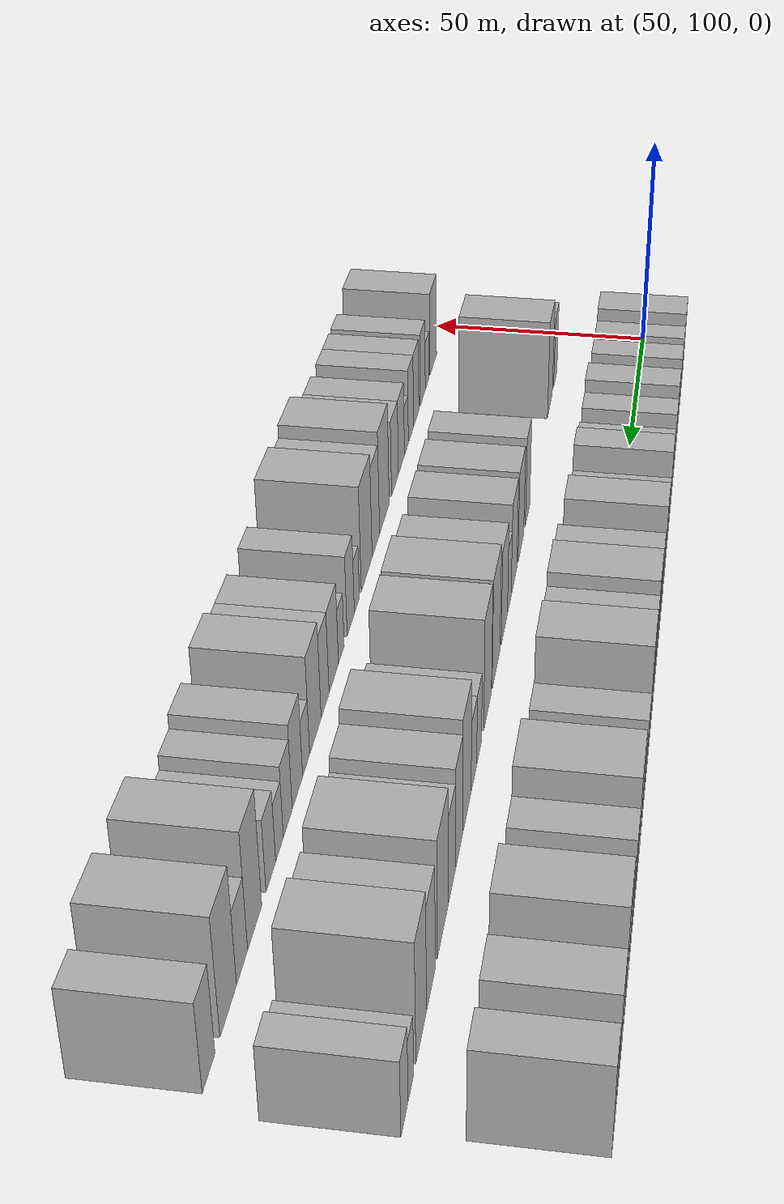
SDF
<sdf version="1.6">
 <world name="default">
  <model name="building_52">
   <static>1</static>
   <pose>50.0000 116.5510 0 0.000000 0.000000 0.000000</pose>
   <link name="link">
    <pose>0 0 9.00 0 0 0</pose>
    <collision name="collision"><geometry><box><size>20.0000 8.9284 18.0000</size></box></geometry></collision>
    <visual name="visual">
     <cast_shadows>0</cast_shadows>
     <geometry><box><size>20.0000 8.9284 18.0000</size></box></geometry>
     <material>
      <script>
       <uri>model://HANNAS_wall/materials/scripts</uri>
       <uri>model://HANNAS_wall/materials/textures</uri>
       <name>vrc/HANNAS_wall</name>
      </script>
     </material>
    </visual>
   </link>
  </model>
  <model name="building_53">
   <static>1</static>
   <pose>50.0000 124.0725 0 0.000000 0.000000 0.000000</pose>
   <link name="link">
    <pose>0 0 7.50 0 0 0</pose>
    <collision name="collision"><geometry><box><size>20.0000 6.1146 15.0000</size></box></geometry></collision>
    <visual name="visual">
     <cast_shadows>0</cast_shadows>
     <geometry><box><size>20.0000 6.1146 15.0000</size></box></geometry>
     <material>
      <script>
       <uri>model://HANNAS_wall/materials/scripts</uri>
       <uri>model://HANNAS_wall/materials/textures</uri>
       <name>vrc/HANNAS_wall</name>
      </script>
     </material>
    </visual>
   </link>
  </model>
  <model name="building_54">
   <static>1</static>
   <pose>50.0000 133.5825 0 0.000000 0.000000 0.000000</pose>
   <link name="link">
    <pose>0 0 7.50 0 0 0</pose>
    <collision name="collision"><geometry><box><size>20.0000 6.9054 15.0000</size></box></geometry></collision>
    <visual name="visual">
     <cast_shadows>0</cast_shadows>
     <geometry><box><size>20.0000 6.9054 15.0000</size></box></geometry>
     <material>
      <script>
       <uri>model://HANNAS_wall/materials/scripts</uri>
       <uri>model://HANNAS_wall/materials/textures</uri>
       <name>vrc/HANNAS_wall</name>
      </script>
     </material>
    </visual>
   </link>
  </model>
  <model name="building_55">
   <static>1</static>
   <pose>50.0000 142.9918 0 0.000000 0.000000 0.000000</pose>
   <link name="link">
    <pose>0 0 6.00 0 0 0</pose>
    <collision name="collision"><geometry><box><size>20.0000 5.9133 12.0000</size></box></geometry></collision>
    <visual name="visual">
     <cast_shadows>0</cast_shadows>
     <geometry><box><size>20.0000 5.9133 12.0000</size></box></geometry>
     <material>
      <script>
       <uri>model://HANNAS_wall/materials/scripts</uri>
       <uri>model://HANNAS_wall/materials/textures</uri>
       <name>vrc/HANNAS_wall</name>
      </script>
     </material>
    </visual>
   </link>
  </model>
  <model name="building_56">
   <static>1</static>
   <pose>50.0000 150.8414 0 0.000000 0.000000 0.000000</pose>
   <link name="link">
    <pose>0 0 9.00 0 0 0</pose>
    <collision name="collision"><geometry><box><size>20.0000 7.7859 18.0000</size></box></geometry></collision>
    <visual name="visual">
     <cast_shadows>0</cast_shadows>
     <geometry><box><size>20.0000 7.7859 18.0000</size></box></geometry>
     <material>
      <script>
       <uri>model://HANNAS_wall/materials/scripts</uri>
       <uri>model://HANNAS_wall/materials/textures</uri>
       <name>vrc/HANNAS_wall</name>
      </script>
     </material>
    </visual>
   </link>
  </model>
  <model name="building_57">
   <static>1</static>
   <pose>50.0000 158.1924 0 0.000000 0.000000 0.000000</pose>
   <link name="link">
    <pose>0 0 7.50 0 0 0</pose>
    <collision name="collision"><geometry><box><size>20.0000 6.9160 15.0000</size></box></geometry></collision>
    <visual name="visual">
     <cast_shadows>0</cast_shadows>
     <geometry><box><size>20.0000 6.9160 15.0000</size></box></geometry>
     <material>
      <script>
       <uri>model://HANNAS_wall/materials/scripts</uri>
       <uri>model://HANNAS_wall/materials/textures</uri>
       <name>vrc/HANNAS_wall</name>
      </script>
     </material>
    </visual>
   </link>
  </model>
  <model name="building_58">
   <static>1</static>
   <pose>50.0000 165.0952 0 0.000000 0.000000 0.000000</pose>
   <link name="link">
    <pose>0 0 6.00 0 0 0</pose>
    <collision name="collision"><geometry><box><size>20.0000 4.8894 12.0000</size></box></geometry></collision>
    <visual name="visual">
     <cast_shadows>0</cast_shadows>
     <geometry><box><size>20.0000 4.8894 12.0000</size></box></geometry>
     <material>
      <script>
       <uri>model://HANNAS_wall/materials/scripts</uri>
       <uri>model://HANNAS_wall/materials/textures</uri>
       <name>vrc/HANNAS_wall</name>
      </script>
     </material>
    </visual>
   </link>
  </model>
  <model name="building_59">
   <static>1</static>
   <pose>50.0000 170.6909 0 0.000000 0.000000 0.000000</pose>
   <link name="link">
    <pose>0 0 7.50 0 0 0</pose>
    <collision name="collision"><geometry><box><size>20.0000 6.3020 15.0000</size></box></geometry></collision>
    <visual name="visual">
     <cast_shadows>0</cast_shadows>
     <geometry><box><size>20.0000 6.3020 15.0000</size></box></geometry>
     <material>
      <script>
       <uri>model://HANNAS_wall/materials/scripts</uri>
       <uri>model://HANNAS_wall/materials/textures</uri>
       <name>vrc/HANNAS_wall</name>
      </script>
     </material>
    </visual>
   </link>
  </model>
  <model name="building_60">
   <static>1</static>
   <pose>50.0000 178.4471 0 0.000000 0.000000 0.000000</pose>
   <link name="link">
    <pose>0 0 9.00 0 0 0</pose>
    <collision name="collision"><geometry><box><size>20.0000 7.2104 18.0000</size></box></geometry></collision>
    <visual name="visual">
     <cast_shadows>0</cast_shadows>
     <geometry><box><size>20.0000 7.2104 18.0000</size></box></geometry>
     <material>
      <script>
       <uri>model://HANNAS_wall/materials/scripts</uri>
       <uri>model://HANNAS_wall/materials/textures</uri>
       <name>vrc/HANNAS_wall</name>
      </script>
     </material>
    </visual>
   </link>
  </model>
  <model name="building_61">
   <static>1</static>
   <pose>50.0000 184.8641 0 0.000000 0.000000 0.000000</pose>
   <link name="link">
    <pose>0 0 6.00 0 0 0</pose>
    <collision name="collision"><geometry><box><size>20.0000 5.6237 12.0000</size></box></geometry></collision>
    <visual name="visual">
     <cast_shadows>0</cast_shadows>
     <geometry><box><size>20.0000 5.6237 12.0000</size></box></geometry>
     <material>
      <script>
       <uri>model://HANNAS_wall/materials/scripts</uri>
       <uri>model://HANNAS_wall/materials/textures</uri>
       <name>vrc/HANNAS_wall</name>
      </script>
     </material>
    </visual>
   </link>
  </model>
  <model name="building_62">
   <static>1</static>
   <pose>50.0000 190.1139 0 0.000000 0.000000 0.000000</pose>
   <link name="link">
    <pose>0 0 6.00 0 0 0</pose>
    <collision name="collision"><geometry><box><size>20.0000 4.8758 12.0000</size></box></geometry></collision>
    <visual name="visual">
     <cast_shadows>0</cast_shadows>
     <geometry><box><size>20.0000 4.8758 12.0000</size></box></geometry>
     <material>
      <script>
       <uri>model://HANNAS_wall/materials/scripts</uri>
       <uri>model://HANNAS_wall/materials/textures</uri>
       <name>vrc/HANNAS_wall</name>
      </script>
     </material>
    </visual>
   </link>
  </model>
  <model name="building_63">
   <static>1</static>
   <pose>50.0000 198.0150 0 0.000000 0.000000 0.000000</pose>
   <link name="link">
    <pose>0 0 9.00 0 0 0</pose>
    <collision name="collision"><geometry><box><size>20.0000 8.9264 18.0000</size></box></geometry></collision>
    <visual name="visual">
     <cast_shadows>0</cast_shadows>
     <geometry><box><size>20.0000 8.9264 18.0000</size></box></geometry>
     <material>
      <script>
       <uri>model://HANNAS_wall/materials/scripts</uri>
       <uri>model://HANNAS_wall/materials/textures</uri>
       <name>vrc/HANNAS_wall</name>
      </script>
     </material>
    </visual>
   </link>
  </model>
  <model name="building_64">
   <static>1</static>
   <pose>50.0000 208.0504 0 0.000000 0.000000 0.000000</pose>
   <link name="link">
    <pose>0 0 6.00 0 0 0</pose>
    <collision name="collision"><geometry><box><size>20.0000 5.1443 12.0000</size></box></geometry></collision>
    <visual name="visual">
     <cast_shadows>0</cast_shadows>
     <geometry><box><size>20.0000 5.1443 12.0000</size></box></geometry>
     <material>
      <script>
       <uri>model://HANNAS_wall/materials/scripts</uri>
       <uri>model://HANNAS_wall/materials/textures</uri>
       <name>vrc/HANNAS_wall</name>
      </script>
     </material>
    </visual>
   </link>
  </model>
  <model name="building_65">
   <static>1</static>
   <pose>50.0000 213.4039 0 0.000000 0.000000 0.000000</pose>
   <link name="link">
    <pose>0 0 6.00 0 0 0</pose>
    <collision name="collision"><geometry><box><size>20.0000 5.5627 12.0000</size></box></geometry></collision>
    <visual name="visual">
     <cast_shadows>0</cast_shadows>
     <geometry><box><size>20.0000 5.5627 12.0000</size></box></geometry>
     <material>
      <script>
       <uri>model://HANNAS_wall/materials/scripts</uri>
       <uri>model://HANNAS_wall/materials/textures</uri>
       <name>vrc/HANNAS_wall</name>
      </script>
     </material>
    </visual>
   </link>
  </model>
  <model name="building_66">
   <static>1</static>
   <pose>50.0000 221.0878 0 0.000000 0.000000 0.000000</pose>
   <link name="link">
    <pose>0 0 10.50 0 0 0</pose>
    <collision name="collision"><geometry><box><size>20.0000 9.8053 21.0000</size></box></geometry></collision>
    <visual name="visual">
     <cast_shadows>0</cast_shadows>
     <geometry><box><size>20.0000 9.8053 21.0000</size></box></geometry>
     <material>
      <script>
       <uri>model://HANNAS_wall/materials/scripts</uri>
       <uri>model://HANNAS_wall/materials/textures</uri>
       <name>vrc/HANNAS_wall</name>
      </script>
     </material>
    </visual>
   </link>
  </model>
  <model name="building_67">
   <static>1</static>
   <pose>50.0000 231.2002 0 0.000000 0.000000 0.000000</pose>
   <link name="link">
    <pose>0 0 12.00 0 0 0</pose>
    <collision name="collision"><geometry><box><size>20.0000 10.4196 24.0000</size></box></geometry></collision>
    <visual name="visual">
     <cast_shadows>0</cast_shadows>
     <geometry><box><size>20.0000 10.4196 24.0000</size></box></geometry>
     <material>
      <script>
       <uri>model://HANNAS_wall/materials/scripts</uri>
       <uri>model://HANNAS_wall/materials/textures</uri>
       <name>vrc/HANNAS_wall</name>
      </script>
     </material>
    </visual>
   </link>
  </model>
  <model name="building_68">
   <static>1</static>
   <pose>50.0000 240.6940 0 0.000000 0.000000 0.000000</pose>
   <link name="link">
    <pose>0 0 10.50 0 0 0</pose>
    <collision name="collision"><geometry><box><size>20.0000 8.5681 21.0000</size></box></geometry></collision>
    <visual name="visual">
     <cast_shadows>0</cast_shadows>
     <geometry><box><size>20.0000 8.5681 21.0000</size></box></geometry>
     <material>
      <script>
       <uri>model://HANNAS_wall/materials/scripts</uri>
       <uri>model://HANNAS_wall/materials/textures</uri>
       <name>vrc/HANNAS_wall</name>
      </script>
     </material>
    </visual>
   </link>
  </model>
  <model name="building_69">
   <static>1</static>
   <pose>50.0000 250.3190 0 0.000000 0.000000 0.000000</pose>
   <link name="link">
    <pose>0 0 12.00 0 0 0</pose>
    <collision name="collision"><geometry><box><size>20.0000 10.6820 24.0000</size></box></geometry></collision>
    <visual name="visual">
     <cast_shadows>0</cast_shadows>
     <geometry><box><size>20.0000 10.6820 24.0000</size></box></geometry>
     <material>
      <script>
       <uri>model://HANNAS_wall/materials/scripts</uri>
       <uri>model://HANNAS_wall/materials/textures</uri>
       <name>vrc/HANNAS_wall</name>
      </script>
     </material>
    </visual>
   </link>
  </model>
  <model name="building_70">
   <static>1</static>
   <pose>50.0000 260.3813 0 0.000000 0.000000 0.000000</pose>
   <link name="link">
    <pose>0 0 7.50 0 0 0</pose>
    <collision name="collision"><geometry><box><size>20.0000 7.4426 15.0000</size></box></geometry></collision>
    <visual name="visual">
     <cast_shadows>0</cast_shadows>
     <geometry><box><size>20.0000 7.4426 15.0000</size></box></geometry>
     <material>
      <script>
       <uri>model://HANNAS_wall/materials/scripts</uri>
       <uri>model://HANNAS_wall/materials/textures</uri>
       <name>vrc/HANNAS_wall</name>
      </script>
     </material>
    </visual>
   </link>
  </model>
  <model name="building_71">
   <static>1</static>
   <pose>50.0000 268.9897 0 0.000000 0.000000 0.000000</pose>
   <link name="link">
    <pose>0 0 6.00 0 0 0</pose>
    <collision name="collision"><geometry><box><size>20.0000 5.7741 12.0000</size></box></geometry></collision>
    <visual name="visual">
     <cast_shadows>0</cast_shadows>
     <geometry><box><size>20.0000 5.7741 12.0000</size></box></geometry>
     <material>
      <script>
       <uri>model://HANNAS_wall/materials/scripts</uri>
       <uri>model://HANNAS_wall/materials/textures</uri>
       <name>vrc/HANNAS_wall</name>
      </script>
     </material>
    </visual>
   </link>
  </model>
  <model name="building_72">
   <static>1</static>
   <pose>50.0000 274.7653 0 0.000000 0.000000 0.000000</pose>
   <link name="link">
    <pose>0 0 6.00 0 0 0</pose>
    <collision name="collision"><geometry><box><size>20.0000 5.7773 12.0000</size></box></geometry></collision>
    <visual name="visual">
     <cast_shadows>0</cast_shadows>
     <geometry><box><size>20.0000 5.7773 12.0000</size></box></geometry>
     <material>
      <script>
       <uri>model://HANNAS_wall/materials/scripts</uri>
       <uri>model://HANNAS_wall/materials/textures</uri>
       <name>vrc/HANNAS_wall</name>
      </script>
     </material>
    </visual>
   </link>
  </model>
  <model name="building_73">
   <static>1</static>
   <pose>50.0000 283.5271 0 0.000000 0.000000 0.000000</pose>
   <link name="link">
    <pose>0 0 12.00 0 0 0</pose>
    <collision name="collision"><geometry><box><size>20.0000 11.7462 24.0000</size></box></geometry></collision>
    <visual name="visual">
     <cast_shadows>0</cast_shadows>
     <geometry><box><size>20.0000 11.7462 24.0000</size></box></geometry>
     <material>
      <script>
       <uri>model://HANNAS_wall/materials/scripts</uri>
       <uri>model://HANNAS_wall/materials/textures</uri>
       <name>vrc/HANNAS_wall</name>
      </script>
     </material>
    </visual>
   </link>
  </model>
  <model name="building_74">
   <static>1</static>
   <pose>50.0000 293.0660 0 0.000000 0.000000 0.000000</pose>
   <link name="link">
    <pose>0 0 9.00 0 0 0</pose>
    <collision name="collision"><geometry><box><size>20.0000 7.3316 18.0000</size></box></geometry></collision>
    <visual name="visual">
     <cast_shadows>0</cast_shadows>
     <geometry><box><size>20.0000 7.3316 18.0000</size></box></geometry>
     <material>
      <script>
       <uri>model://HANNAS_wall/materials/scripts</uri>
       <uri>model://HANNAS_wall/materials/textures</uri>
       <name>vrc/HANNAS_wall</name>
      </script>
     </material>
    </visual>
   </link>
  </model>
  <model name="building_75">
   <static>1</static>
   <pose>50.0000 303.2862 0 0.000000 0.000000 0.000000</pose>
   <link name="link">
    <pose>0 0 7.50 0 0 0</pose>
    <collision name="collision"><geometry><box><size>20.0000 7.1087 15.0000</size></box></geometry></collision>
    <visual name="visual">
     <cast_shadows>0</cast_shadows>
     <geometry><box><size>20.0000 7.1087 15.0000</size></box></geometry>
     <material>
      <script>
       <uri>model://HANNAS_wall/materials/scripts</uri>
       <uri>model://HANNAS_wall/materials/textures</uri>
       <name>vrc/HANNAS_wall</name>
      </script>
     </material>
    </visual>
   </link>
  </model>
  <model name="building_76">
   <static>1</static>
   <pose>50.0000 312.0511 0 0.000000 0.000000 0.000000</pose>
   <link name="link">
    <pose>0 0 12.00 0 0 0</pose>
    <collision name="collision"><geometry><box><size>20.0000 10.4210 24.0000</size></box></geometry></collision>
    <visual name="visual">
     <cast_shadows>0</cast_shadows>
     <geometry><box><size>20.0000 10.4210 24.0000</size></box></geometry>
     <material>
      <script>
       <uri>model://HANNAS_wall/materials/scripts</uri>
       <uri>model://HANNAS_wall/materials/textures</uri>
       <name>vrc/HANNAS_wall</name>
      </script>
     </material>
    </visual>
   </link>
  </model>
  <model name="building_77">
   <static>1</static>
   <pose>50.0000 323.6863 0 0.000000 0.000000 0.000000</pose>
   <link name="link">
    <pose>0 0 9.00 0 0 0</pose>
    <collision name="collision"><geometry><box><size>20.0000 8.8494 18.0000</size></box></geometry></collision>
    <visual name="visual">
     <cast_shadows>0</cast_shadows>
     <geometry><box><size>20.0000 8.8494 18.0000</size></box></geometry>
     <material>
      <script>
       <uri>model://HANNAS_wall/materials/scripts</uri>
       <uri>model://HANNAS_wall/materials/textures</uri>
       <name>vrc/HANNAS_wall</name>
      </script>
     </material>
    </visual>
   </link>
  </model>
  <model name="building_78">
   <static>1</static>
   <pose>50.0000 330.6366 0 0.000000 0.000000 0.000000</pose>
   <link name="link">
    <pose>0 0 6.00 0 0 0</pose>
    <collision name="collision"><geometry><box><size>20.0000 5.0514 12.0000</size></box></geometry></collision>
    <visual name="visual">
     <cast_shadows>0</cast_shadows>
     <geometry><box><size>20.0000 5.0514 12.0000</size></box></geometry>
     <material>
      <script>
       <uri>model://HANNAS_wall/materials/scripts</uri>
       <uri>model://HANNAS_wall/materials/textures</uri>
       <name>vrc/HANNAS_wall</name>
      </script>
     </material>
    </visual>
   </link>
  </model>
  <model name="building_79">
   <static>1</static>
   <pose>50.0000 336.9710 0 0.000000 0.000000 0.000000</pose>
   <link name="link">
    <pose>0 0 9.00 0 0 0</pose>
    <collision name="collision"><geometry><box><size>20.0000 7.6172 18.0000</size></box></geometry></collision>
    <visual name="visual">
     <cast_shadows>0</cast_shadows>
     <geometry><box><size>20.0000 7.6172 18.0000</size></box></geometry>
     <material>
      <script>
       <uri>model://HANNAS_wall/materials/scripts</uri>
       <uri>model://HANNAS_wall/materials/textures</uri>
       <name>vrc/HANNAS_wall</name>
      </script>
     </material>
    </visual>
   </link>
  </model>
  <model name="building_125">
   <static>1</static>
   <pose>79.0000 123.1789 0 0.000000 0.000000 0.000000</pose>
   <link name="link">
    <pose>0 0 9.00 0 0 0</pose>
    <collision name="collision"><geometry><box><size>20.0000 7.8884 18.0000</size></box></geometry></collision>
    <visual name="visual">
     <cast_shadows>0</cast_shadows>
     <geometry><box><size>20.0000 7.8884 18.0000</size></box></geometry>
     <material>
      <script>
       <uri>model://HANNAS_wall/materials/scripts</uri>
       <uri>model://HANNAS_wall/materials/textures</uri>
       <name>vrc/HANNAS_wall</name>
      </script>
     </material>
    </visual>
   </link>
  </model>
  <model name="building_126">
   <static>1</static>
   <pose>79.0000 135.6471 0 0.000000 0.000000 0.000000</pose>
   <link name="link">
    <pose>0 0 12.00 0 0 0</pose>
    <collision name="collision"><geometry><box><size>20.0000 11.0478 24.0000</size></box></geometry></collision>
    <visual name="visual">
     <cast_shadows>0</cast_shadows>
     <geometry><box><size>20.0000 11.0478 24.0000</size></box></geometry>
     <material>
      <script>
       <uri>model://HANNAS_wall/materials/scripts</uri>
       <uri>model://HANNAS_wall/materials/textures</uri>
       <name>vrc/HANNAS_wall</name>
      </script>
     </material>
    </visual>
   </link>
  </model>
  <model name="building_127">
   <static>1</static>
   <pose>79.0000 181.8133 0 0.000000 0.000000 0.000000</pose>
   <link name="link">
    <pose>0 0 10.50 0 0 0</pose>
    <collision name="collision"><geometry><box><size>20.0000 8.4282 21.0000</size></box></geometry></collision>
    <visual name="visual">
     <cast_shadows>0</cast_shadows>
     <geometry><box><size>20.0000 8.4282 21.0000</size></box></geometry>
     <material>
      <script>
       <uri>model://HANNAS_wall/materials/scripts</uri>
       <uri>model://HANNAS_wall/materials/textures</uri>
       <name>vrc/HANNAS_wall</name>
      </script>
     </material>
    </visual>
   </link>
  </model>
  <model name="building_128">
   <static>1</static>
   <pose>79.0000 194.0619 0 0.000000 0.000000 0.000000</pose>
   <link name="link">
    <pose>0 0 10.50 0 0 0</pose>
    <collision name="collision"><geometry><box><size>20.0000 10.0692 21.0000</size></box></geometry></collision>
    <visual name="visual">
     <cast_shadows>0</cast_shadows>
     <geometry><box><size>20.0000 10.0692 21.0000</size></box></geometry>
     <material>
      <script>
       <uri>model://HANNAS_wall/materials/scripts</uri>
       <uri>model://HANNAS_wall/materials/textures</uri>
       <name>vrc/HANNAS_wall</name>
      </script>
     </material>
    </visual>
   </link>
  </model>
  <model name="building_129">
   <static>1</static>
   <pose>79.0000 205.9776 0 0.000000 0.000000 0.000000</pose>
   <link name="link">
    <pose>0 0 10.50 0 0 0</pose>
    <collision name="collision"><geometry><box><size>20.0000 9.7621 21.0000</size></box></geometry></collision>
    <visual name="visual">
     <cast_shadows>0</cast_shadows>
     <geometry><box><size>20.0000 9.7621 21.0000</size></box></geometry>
     <material>
      <script>
       <uri>model://HANNAS_wall/materials/scripts</uri>
       <uri>model://HANNAS_wall/materials/textures</uri>
       <name>vrc/HANNAS_wall</name>
      </script>
     </material>
    </visual>
   </link>
  </model>
  <model name="building_130">
   <static>1</static>
   <pose>79.0000 213.9199 0 0.000000 0.000000 0.000000</pose>
   <link name="link">
    <pose>0 0 7.50 0 0 0</pose>
    <collision name="collision"><geometry><box><size>20.0000 6.1225 15.0000</size></box></geometry></collision>
    <visual name="visual">
     <cast_shadows>0</cast_shadows>
     <geometry><box><size>20.0000 6.1225 15.0000</size></box></geometry>
     <material>
      <script>
       <uri>model://HANNAS_wall/materials/scripts</uri>
       <uri>model://HANNAS_wall/materials/textures</uri>
       <name>vrc/HANNAS_wall</name>
      </script>
     </material>
    </visual>
   </link>
  </model>
  <model name="building_131">
   <static>1</static>
   <pose>79.0000 221.8933 0 0.000000 0.000000 0.000000</pose>
   <link name="link">
    <pose>0 0 10.50 0 0 0</pose>
    <collision name="collision"><geometry><box><size>20.0000 9.8243 21.0000</size></box></geometry></collision>
    <visual name="visual">
     <cast_shadows>0</cast_shadows>
     <geometry><box><size>20.0000 9.8243 21.0000</size></box></geometry>
     <material>
      <script>
       <uri>model://HANNAS_wall/materials/scripts</uri>
       <uri>model://HANNAS_wall/materials/textures</uri>
       <name>vrc/HANNAS_wall</name>
      </script>
     </material>
    </visual>
   </link>
  </model>
  <model name="building_132">
   <static>1</static>
   <pose>79.0000 234.6121 0 0.000000 0.000000 0.000000</pose>
   <link name="link">
    <pose>0 0 12.00 0 0 0</pose>
    <collision name="collision"><geometry><box><size>20.0000 11.6132 24.0000</size></box></geometry></collision>
    <visual name="visual">
     <cast_shadows>0</cast_shadows>
     <geometry><box><size>20.0000 11.6132 24.0000</size></box></geometry>
     <material>
      <script>
       <uri>model://HANNAS_wall/materials/scripts</uri>
       <uri>model://HANNAS_wall/materials/textures</uri>
       <name>vrc/HANNAS_wall</name>
      </script>
     </material>
    </visual>
   </link>
  </model>
  <model name="building_133">
   <static>1</static>
   <pose>79.0000 246.8476 0 0.000000 0.000000 0.000000</pose>
   <link name="link">
    <pose>0 0 12.00 0 0 0</pose>
    <collision name="collision"><geometry><box><size>20.0000 10.8577 24.0000</size></box></geometry></collision>
    <visual name="visual">
     <cast_shadows>0</cast_shadows>
     <geometry><box><size>20.0000 10.8577 24.0000</size></box></geometry>
     <material>
      <script>
       <uri>model://HANNAS_wall/materials/scripts</uri>
       <uri>model://HANNAS_wall/materials/textures</uri>
       <name>vrc/HANNAS_wall</name>
      </script>
     </material>
    </visual>
   </link>
  </model>
  <model name="building_134">
   <static>1</static>
   <pose>79.0000 258.4917 0 0.000000 0.000000 0.000000</pose>
   <link name="link">
    <pose>0 0 7.50 0 0 0</pose>
    <collision name="collision"><geometry><box><size>20.0000 6.4305 15.0000</size></box></geometry></collision>
    <visual name="visual">
     <cast_shadows>0</cast_shadows>
     <geometry><box><size>20.0000 6.4305 15.0000</size></box></geometry>
     <material>
      <script>
       <uri>model://HANNAS_wall/materials/scripts</uri>
       <uri>model://HANNAS_wall/materials/textures</uri>
       <name>vrc/HANNAS_wall</name>
      </script>
     </material>
    </visual>
   </link>
  </model>
  <model name="building_135">
   <static>1</static>
   <pose>79.0000 265.3143 0 0.000000 0.000000 0.000000</pose>
   <link name="link">
    <pose>0 0 7.50 0 0 0</pose>
    <collision name="collision"><geometry><box><size>20.0000 7.2147 15.0000</size></box></geometry></collision>
    <visual name="visual">
     <cast_shadows>0</cast_shadows>
     <geometry><box><size>20.0000 7.2147 15.0000</size></box></geometry>
     <material>
      <script>
       <uri>model://HANNAS_wall/materials/scripts</uri>
       <uri>model://HANNAS_wall/materials/textures</uri>
       <name>vrc/HANNAS_wall</name>
      </script>
     </material>
    </visual>
   </link>
  </model>
  <model name="building_136">
   <static>1</static>
   <pose>79.0000 274.1628 0 0.000000 0.000000 0.000000</pose>
   <link name="link">
    <pose>0 0 12.00 0 0 0</pose>
    <collision name="collision"><geometry><box><size>20.0000 10.4823 24.0000</size></box></geometry></collision>
    <visual name="visual">
     <cast_shadows>0</cast_shadows>
     <geometry><box><size>20.0000 10.4823 24.0000</size></box></geometry>
     <material>
      <script>
       <uri>model://HANNAS_wall/materials/scripts</uri>
       <uri>model://HANNAS_wall/materials/textures</uri>
       <name>vrc/HANNAS_wall</name>
      </script>
     </material>
    </visual>
   </link>
  </model>
  <model name="building_137">
   <static>1</static>
   <pose>79.0000 283.6721 0 0.000000 0.000000 0.000000</pose>
   <link name="link">
    <pose>0 0 10.50 0 0 0</pose>
    <collision name="collision"><geometry><box><size>20.0000 8.5364 21.0000</size></box></geometry></collision>
    <visual name="visual">
     <cast_shadows>0</cast_shadows>
     <geometry><box><size>20.0000 8.5364 21.0000</size></box></geometry>
     <material>
      <script>
       <uri>model://HANNAS_wall/materials/scripts</uri>
       <uri>model://HANNAS_wall/materials/textures</uri>
       <name>vrc/HANNAS_wall</name>
      </script>
     </material>
    </visual>
   </link>
  </model>
  <model name="building_138">
   <static>1</static>
   <pose>79.0000 291.8912 0 0.000000 0.000000 0.000000</pose>
   <link name="link">
    <pose>0 0 9.00 0 0 0</pose>
    <collision name="collision"><geometry><box><size>20.0000 7.9017 18.0000</size></box></geometry></collision>
    <visual name="visual">
     <cast_shadows>0</cast_shadows>
     <geometry><box><size>20.0000 7.9017 18.0000</size></box></geometry>
     <material>
      <script>
       <uri>model://HANNAS_wall/materials/scripts</uri>
       <uri>model://HANNAS_wall/materials/textures</uri>
       <name>vrc/HANNAS_wall</name>
      </script>
     </material>
    </visual>
   </link>
  </model>
  <model name="building_139">
   <static>1</static>
   <pose>79.0000 301.7388 0 0.000000 0.000000 0.000000</pose>
   <link name="link">
    <pose>0 0 12.00 0 0 0</pose>
    <collision name="collision"><geometry><box><size>20.0000 11.7935 24.0000</size></box></geometry></collision>
    <visual name="visual">
     <cast_shadows>0</cast_shadows>
     <geometry><box><size>20.0000 11.7935 24.0000</size></box></geometry>
     <material>
      <script>
       <uri>model://HANNAS_wall/materials/scripts</uri>
       <uri>model://HANNAS_wall/materials/textures</uri>
       <name>vrc/HANNAS_wall</name>
      </script>
     </material>
    </visual>
   </link>
  </model>
  <model name="building_140">
   <static>1</static>
   <pose>79.0000 313.9639 0 0.000000 0.000000 0.000000</pose>
   <link name="link">
    <pose>0 0 10.50 0 0 0</pose>
    <collision name="collision"><geometry><box><size>20.0000 8.6566 21.0000</size></box></geometry></collision>
    <visual name="visual">
     <cast_shadows>0</cast_shadows>
     <geometry><box><size>20.0000 8.6566 21.0000</size></box></geometry>
     <material>
      <script>
       <uri>model://HANNAS_wall/materials/scripts</uri>
       <uri>model://HANNAS_wall/materials/textures</uri>
       <name>vrc/HANNAS_wall</name>
      </script>
     </material>
    </visual>
   </link>
  </model>
  <model name="building_141">
   <static>1</static>
   <pose>79.0000 323.3206 0 0.000000 0.000000 0.000000</pose>
   <link name="link">
    <pose>0 0 12.00 0 0 0</pose>
    <collision name="collision"><geometry><box><size>20.0000 10.0569 24.0000</size></box></geometry></collision>
    <visual name="visual">
     <cast_shadows>0</cast_shadows>
     <geometry><box><size>20.0000 10.0569 24.0000</size></box></geometry>
     <material>
      <script>
       <uri>model://HANNAS_wall/materials/scripts</uri>
       <uri>model://HANNAS_wall/materials/textures</uri>
       <name>vrc/HANNAS_wall</name>
      </script>
     </material>
    </visual>
   </link>
  </model>
  <model name="building_142">
   <static>1</static>
   <pose>79.0000 332.8075 0 0.000000 0.000000 0.000000</pose>
   <link name="link">
    <pose>0 0 6.00 0 0 0</pose>
    <collision name="collision"><geometry><box><size>20.0000 4.9169 12.0000</size></box></geometry></collision>
    <visual name="visual">
     <cast_shadows>0</cast_shadows>
     <geometry><box><size>20.0000 4.9169 12.0000</size></box></geometry>
     <material>
      <script>
       <uri>model://HANNAS_wall/materials/scripts</uri>
       <uri>model://HANNAS_wall/materials/textures</uri>
       <name>vrc/HANNAS_wall</name>
      </script>
     </material>
    </visual>
   </link>
  </model>
  <model name="building_143">
   <static>1</static>
   <pose>79.0000 338.3802 0 0.000000 0.000000 0.000000</pose>
   <link name="link">
    <pose>0 0 7.50 0 0 0</pose>
    <collision name="collision"><geometry><box><size>20.0000 6.2285 15.0000</size></box></geometry></collision>
    <visual name="visual">
     <cast_shadows>0</cast_shadows>
     <geometry><box><size>20.0000 6.2285 15.0000</size></box></geometry>
     <material>
      <script>
       <uri>model://HANNAS_wall/materials/scripts</uri>
       <uri>model://HANNAS_wall/materials/textures</uri>
       <name>vrc/HANNAS_wall</name>
      </script>
     </material>
    </visual>
   </link>
  </model>
  <model name="building_193">
   <static>1</static>
   <pose>108.0000 120.0014 0 0.000000 0.000000 0.000000</pose>
   <link name="link">
    <pose>0 0 10.50 0 0 0</pose>
    <collision name="collision"><geometry><box><size>20.0000 10.4848 21.0000</size></box></geometry></collision>
    <visual name="visual">
     <cast_shadows>0</cast_shadows>
     <geometry><box><size>20.0000 10.4848 21.0000</size></box></geometry>
     <material>
      <script>
       <uri>model://HANNAS_wall/materials/scripts</uri>
       <uri>model://HANNAS_wall/materials/textures</uri>
       <name>vrc/HANNAS_wall</name>
      </script>
     </material>
    </visual>
   </link>
  </model>
  <model name="building_194">
   <static>1</static>
   <pose>108.0000 129.1951 0 0.000000 0.000000 0.000000</pose>
   <link name="link">
    <pose>0 0 6.00 0 0 0</pose>
    <collision name="collision"><geometry><box><size>20.0000 5.9026 12.0000</size></box></geometry></collision>
    <visual name="visual">
     <cast_shadows>0</cast_shadows>
     <geometry><box><size>20.0000 5.9026 12.0000</size></box></geometry>
     <material>
      <script>
       <uri>model://HANNAS_wall/materials/scripts</uri>
       <uri>model://HANNAS_wall/materials/textures</uri>
       <name>vrc/HANNAS_wall</name>
      </script>
     </material>
    </visual>
   </link>
  </model>
  <model name="building_195">
   <static>1</static>
   <pose>108.0000 135.8984 0 0.000000 0.000000 0.000000</pose>
   <link name="link">
    <pose>0 0 9.00 0 0 0</pose>
    <collision name="collision"><geometry><box><size>20.0000 7.5039 18.0000</size></box></geometry></collision>
    <visual name="visual">
     <cast_shadows>0</cast_shadows>
     <geometry><box><size>20.0000 7.5039 18.0000</size></box></geometry>
     <material>
      <script>
       <uri>model://HANNAS_wall/materials/scripts</uri>
       <uri>model://HANNAS_wall/materials/textures</uri>
       <name>vrc/HANNAS_wall</name>
      </script>
     </material>
    </visual>
   </link>
  </model>
  <model name="building_196">
   <static>1</static>
   <pose>108.0000 145.3333 0 0.000000 0.000000 0.000000</pose>
   <link name="link">
    <pose>0 0 9.00 0 0 0</pose>
    <collision name="collision"><geometry><box><size>20.0000 7.3658 18.0000</size></box></geometry></collision>
    <visual name="visual">
     <cast_shadows>0</cast_shadows>
     <geometry><box><size>20.0000 7.3658 18.0000</size></box></geometry>
     <material>
      <script>
       <uri>model://HANNAS_wall/materials/scripts</uri>
       <uri>model://HANNAS_wall/materials/textures</uri>
       <name>vrc/HANNAS_wall</name>
      </script>
     </material>
    </visual>
   </link>
  </model>
  <model name="building_197">
   <static>1</static>
   <pose>108.0000 152.6596 0 0.000000 0.000000 0.000000</pose>
   <link name="link">
    <pose>0 0 9.00 0 0 0</pose>
    <collision name="collision"><geometry><box><size>20.0000 7.2867 18.0000</size></box></geometry></collision>
    <visual name="visual">
     <cast_shadows>0</cast_shadows>
     <geometry><box><size>20.0000 7.2867 18.0000</size></box></geometry>
     <material>
      <script>
       <uri>model://HANNAS_wall/materials/scripts</uri>
       <uri>model://HANNAS_wall/materials/textures</uri>
       <name>vrc/HANNAS_wall</name>
      </script>
     </material>
    </visual>
   </link>
  </model>
  <model name="building_198">
   <static>1</static>
   <pose>108.0000 158.9442 0 0.000000 0.000000 0.000000</pose>
   <link name="link">
    <pose>0 0 6.00 0 0 0</pose>
    <collision name="collision"><geometry><box><size>20.0000 5.2825 12.0000</size></box></geometry></collision>
    <visual name="visual">
     <cast_shadows>0</cast_shadows>
     <geometry><box><size>20.0000 5.2825 12.0000</size></box></geometry>
     <material>
      <script>
       <uri>model://HANNAS_wall/materials/scripts</uri>
       <uri>model://HANNAS_wall/materials/textures</uri>
       <name>vrc/HANNAS_wall</name>
      </script>
     </material>
    </visual>
   </link>
  </model>
  <model name="building_199">
   <static>1</static>
   <pose>108.0000 165.5443 0 0.000000 0.000000 0.000000</pose>
   <link name="link">
    <pose>0 0 9.00 0 0 0</pose>
    <collision name="collision"><geometry><box><size>20.0000 7.9178 18.0000</size></box></geometry></collision>
    <visual name="visual">
     <cast_shadows>0</cast_shadows>
     <geometry><box><size>20.0000 7.9178 18.0000</size></box></geometry>
     <material>
      <script>
       <uri>model://HANNAS_wall/materials/scripts</uri>
       <uri>model://HANNAS_wall/materials/textures</uri>
       <name>vrc/HANNAS_wall</name>
      </script>
     </material>
    </visual>
   </link>
  </model>
  <model name="building_200">
   <static>1</static>
   <pose>108.0000 173.8759 0 0.000000 0.000000 0.000000</pose>
   <link name="link">
    <pose>0 0 9.00 0 0 0</pose>
    <collision name="collision"><geometry><box><size>20.0000 8.7454 18.0000</size></box></geometry></collision>
    <visual name="visual">
     <cast_shadows>0</cast_shadows>
     <geometry><box><size>20.0000 8.7454 18.0000</size></box></geometry>
     <material>
      <script>
       <uri>model://HANNAS_wall/materials/scripts</uri>
       <uri>model://HANNAS_wall/materials/textures</uri>
       <name>vrc/HANNAS_wall</name>
      </script>
     </material>
    </visual>
   </link>
  </model>
  <model name="building_201">
   <static>1</static>
   <pose>108.0000 187.0313 0 0.000000 0.000000 0.000000</pose>
   <link name="link">
    <pose>0 0 12.00 0 0 0</pose>
    <collision name="collision"><geometry><box><size>20.0000 11.5654 24.0000</size></box></geometry></collision>
    <visual name="visual">
     <cast_shadows>0</cast_shadows>
     <geometry><box><size>20.0000 11.5654 24.0000</size></box></geometry>
     <material>
      <script>
       <uri>model://HANNAS_wall/materials/scripts</uri>
       <uri>model://HANNAS_wall/materials/textures</uri>
       <name>vrc/HANNAS_wall</name>
      </script>
     </material>
    </visual>
   </link>
  </model>
  <model name="building_202">
   <static>1</static>
   <pose>108.0000 197.1325 0 0.000000 0.000000 0.000000</pose>
   <link name="link">
    <pose>0 0 10.50 0 0 0</pose>
    <collision name="collision"><geometry><box><size>20.0000 8.6370 21.0000</size></box></geometry></collision>
    <visual name="visual">
     <cast_shadows>0</cast_shadows>
     <geometry><box><size>20.0000 8.6370 21.0000</size></box></geometry>
     <material>
      <script>
       <uri>model://HANNAS_wall/materials/scripts</uri>
       <uri>model://HANNAS_wall/materials/textures</uri>
       <name>vrc/HANNAS_wall</name>
      </script>
     </material>
    </visual>
   </link>
  </model>
  <model name="building_203">
   <static>1</static>
   <pose>108.0000 207.4510 0 0.000000 0.000000 0.000000</pose>
   <link name="link">
    <pose>0 0 12.00 0 0 0</pose>
    <collision name="collision"><geometry><box><size>20.0000 11.9998 24.0000</size></box></geometry></collision>
    <visual name="visual">
     <cast_shadows>0</cast_shadows>
     <geometry><box><size>20.0000 11.9998 24.0000</size></box></geometry>
     <material>
      <script>
       <uri>model://HANNAS_wall/materials/scripts</uri>
       <uri>model://HANNAS_wall/materials/textures</uri>
       <name>vrc/HANNAS_wall</name>
      </script>
     </material>
    </visual>
   </link>
  </model>
  <model name="building_204">
   <static>1</static>
   <pose>108.0000 218.1371 0 0.000000 0.000000 0.000000</pose>
   <link name="link">
    <pose>0 0 6.00 0 0 0</pose>
    <collision name="collision"><geometry><box><size>20.0000 5.3724 12.0000</size></box></geometry></collision>
    <visual name="visual">
     <cast_shadows>0</cast_shadows>
     <geometry><box><size>20.0000 5.3724 12.0000</size></box></geometry>
     <material>
      <script>
       <uri>model://HANNAS_wall/materials/scripts</uri>
       <uri>model://HANNAS_wall/materials/textures</uri>
       <name>vrc/HANNAS_wall</name>
      </script>
     </material>
    </visual>
   </link>
  </model>
  <model name="building_205">
   <static>1</static>
   <pose>108.0000 224.5072 0 0.000000 0.000000 0.000000</pose>
   <link name="link">
    <pose>0 0 9.00 0 0 0</pose>
    <collision name="collision"><geometry><box><size>20.0000 7.3678 18.0000</size></box></geometry></collision>
    <visual name="visual">
     <cast_shadows>0</cast_shadows>
     <geometry><box><size>20.0000 7.3678 18.0000</size></box></geometry>
     <material>
      <script>
       <uri>model://HANNAS_wall/materials/scripts</uri>
       <uri>model://HANNAS_wall/materials/textures</uri>
       <name>vrc/HANNAS_wall</name>
      </script>
     </material>
    </visual>
   </link>
  </model>
  <model name="building_206">
   <static>1</static>
   <pose>108.0000 233.9851 0 0.000000 0.000000 0.000000</pose>
   <link name="link">
    <pose>0 0 6.00 0 0 0</pose>
    <collision name="collision"><geometry><box><size>20.0000 5.5880 12.0000</size></box></geometry></collision>
    <visual name="visual">
     <cast_shadows>0</cast_shadows>
     <geometry><box><size>20.0000 5.5880 12.0000</size></box></geometry>
     <material>
      <script>
       <uri>model://HANNAS_wall/materials/scripts</uri>
       <uri>model://HANNAS_wall/materials/textures</uri>
       <name>vrc/HANNAS_wall</name>
      </script>
     </material>
    </visual>
   </link>
  </model>
  <model name="building_207">
   <static>1</static>
   <pose>108.0000 241.2412 0 0.000000 0.000000 0.000000</pose>
   <link name="link">
    <pose>0 0 9.00 0 0 0</pose>
    <collision name="collision"><geometry><box><size>20.0000 8.9243 18.0000</size></box></geometry></collision>
    <visual name="visual">
     <cast_shadows>0</cast_shadows>
     <geometry><box><size>20.0000 8.9243 18.0000</size></box></geometry>
     <material>
      <script>
       <uri>model://HANNAS_wall/materials/scripts</uri>
       <uri>model://HANNAS_wall/materials/textures</uri>
       <name>vrc/HANNAS_wall</name>
      </script>
     </material>
    </visual>
   </link>
  </model>
  <model name="building_208">
   <static>1</static>
   <pose>108.0000 249.3383 0 0.000000 0.000000 0.000000</pose>
   <link name="link">
    <pose>0 0 9.00 0 0 0</pose>
    <collision name="collision"><geometry><box><size>20.0000 7.2699 18.0000</size></box></geometry></collision>
    <visual name="visual">
     <cast_shadows>0</cast_shadows>
     <geometry><box><size>20.0000 7.2699 18.0000</size></box></geometry>
     <material>
      <script>
       <uri>model://HANNAS_wall/materials/scripts</uri>
       <uri>model://HANNAS_wall/materials/textures</uri>
       <name>vrc/HANNAS_wall</name>
      </script>
     </material>
    </visual>
   </link>
  </model>
  <model name="building_209">
   <static>1</static>
   <pose>108.0000 257.9970 0 0.000000 0.000000 0.000000</pose>
   <link name="link">
    <pose>0 0 10.50 0 0 0</pose>
    <collision name="collision"><geometry><box><size>20.0000 10.0476 21.0000</size></box></geometry></collision>
    <visual name="visual">
     <cast_shadows>0</cast_shadows>
     <geometry><box><size>20.0000 10.0476 21.0000</size></box></geometry>
     <material>
      <script>
       <uri>model://HANNAS_wall/materials/scripts</uri>
       <uri>model://HANNAS_wall/materials/textures</uri>
       <name>vrc/HANNAS_wall</name>
      </script>
     </material>
    </visual>
   </link>
  </model>
  <model name="building_210">
   <static>1</static>
   <pose>108.0000 266.0166 0 0.000000 0.000000 0.000000</pose>
   <link name="link">
    <pose>0 0 6.00 0 0 0</pose>
    <collision name="collision"><geometry><box><size>20.0000 5.9915 12.0000</size></box></geometry></collision>
    <visual name="visual">
     <cast_shadows>0</cast_shadows>
     <geometry><box><size>20.0000 5.9915 12.0000</size></box></geometry>
     <material>
      <script>
       <uri>model://HANNAS_wall/materials/scripts</uri>
       <uri>model://HANNAS_wall/materials/textures</uri>
       <name>vrc/HANNAS_wall</name>
      </script>
     </material>
    </visual>
   </link>
  </model>
  <model name="building_211">
   <static>1</static>
   <pose>108.0000 273.2228 0 0.000000 0.000000 0.000000</pose>
   <link name="link">
    <pose>0 0 9.00 0 0 0</pose>
    <collision name="collision"><geometry><box><size>20.0000 8.4210 18.0000</size></box></geometry></collision>
    <visual name="visual">
     <cast_shadows>0</cast_shadows>
     <geometry><box><size>20.0000 8.4210 18.0000</size></box></geometry>
     <material>
      <script>
       <uri>model://HANNAS_wall/materials/scripts</uri>
       <uri>model://HANNAS_wall/materials/textures</uri>
       <name>vrc/HANNAS_wall</name>
      </script>
     </material>
    </visual>
   </link>
  </model>
  <model name="building_212">
   <static>1</static>
   <pose>108.0000 280.8879 0 0.000000 0.000000 0.000000</pose>
   <link name="link">
    <pose>0 0 7.50 0 0 0</pose>
    <collision name="collision"><geometry><box><size>20.0000 6.9091 15.0000</size></box></geometry></collision>
    <visual name="visual">
     <cast_shadows>0</cast_shadows>
     <geometry><box><size>20.0000 6.9091 15.0000</size></box></geometry>
     <material>
      <script>
       <uri>model://HANNAS_wall/materials/scripts</uri>
       <uri>model://HANNAS_wall/materials/textures</uri>
       <name>vrc/HANNAS_wall</name>
      </script>
     </material>
    </visual>
   </link>
  </model>
  <model name="building_213">
   <static>1</static>
   <pose>108.0000 287.2489 0 0.000000 0.000000 0.000000</pose>
   <link name="link">
    <pose>0 0 6.00 0 0 0</pose>
    <collision name="collision"><geometry><box><size>20.0000 5.8130 12.0000</size></box></geometry></collision>
    <visual name="visual">
     <cast_shadows>0</cast_shadows>
     <geometry><box><size>20.0000 5.8130 12.0000</size></box></geometry>
     <material>
      <script>
       <uri>model://HANNAS_wall/materials/scripts</uri>
       <uri>model://HANNAS_wall/materials/textures</uri>
       <name>vrc/HANNAS_wall</name>
      </script>
     </material>
    </visual>
   </link>
  </model>
  <model name="building_214">
   <static>1</static>
   <pose>108.0000 293.7023 0 0.000000 0.000000 0.000000</pose>
   <link name="link">
    <pose>0 0 7.50 0 0 0</pose>
    <collision name="collision"><geometry><box><size>20.0000 7.0936 15.0000</size></box></geometry></collision>
    <visual name="visual">
     <cast_shadows>0</cast_shadows>
     <geometry><box><size>20.0000 7.0936 15.0000</size></box></geometry>
     <material>
      <script>
       <uri>model://HANNAS_wall/materials/scripts</uri>
       <uri>model://HANNAS_wall/materials/textures</uri>
       <name>vrc/HANNAS_wall</name>
      </script>
     </material>
    </visual>
   </link>
  </model>
  <model name="building_215">
   <static>1</static>
   <pose>108.0000 305.0982 0 0.000000 0.000000 0.000000</pose>
   <link name="link">
    <pose>0 0 12.00 0 0 0</pose>
    <collision name="collision"><geometry><box><size>20.0000 9.6983 24.0000</size></box></geometry></collision>
    <visual name="visual">
     <cast_shadows>0</cast_shadows>
     <geometry><box><size>20.0000 9.6983 24.0000</size></box></geometry>
     <material>
      <script>
       <uri>model://HANNAS_wall/materials/scripts</uri>
       <uri>model://HANNAS_wall/materials/textures</uri>
       <name>vrc/HANNAS_wall</name>
      </script>
     </material>
    </visual>
   </link>
  </model>
  <model name="building_216">
   <static>1</static>
   <pose>108.0000 313.5902 0 0.000000 0.000000 0.000000</pose>
   <link name="link">
    <pose>0 0 7.50 0 0 0</pose>
    <collision name="collision"><geometry><box><size>20.0000 7.2857 15.0000</size></box></geometry></collision>
    <visual name="visual">
     <cast_shadows>0</cast_shadows>
     <geometry><box><size>20.0000 7.2857 15.0000</size></box></geometry>
     <material>
      <script>
       <uri>model://HANNAS_wall/materials/scripts</uri>
       <uri>model://HANNAS_wall/materials/textures</uri>
       <name>vrc/HANNAS_wall</name>
      </script>
     </material>
    </visual>
   </link>
  </model>
  <model name="building_217">
   <static>1</static>
   <pose>108.0000 322.4111 0 0.000000 0.000000 0.000000</pose>
   <link name="link">
    <pose>0 0 12.00 0 0 0</pose>
    <collision name="collision"><geometry><box><size>20.0000 10.3562 24.0000</size></box></geometry></collision>
    <visual name="visual">
     <cast_shadows>0</cast_shadows>
     <geometry><box><size>20.0000 10.3562 24.0000</size></box></geometry>
     <material>
      <script>
       <uri>model://HANNAS_wall/materials/scripts</uri>
       <uri>model://HANNAS_wall/materials/textures</uri>
       <name>vrc/HANNAS_wall</name>
      </script>
     </material>
    </visual>
   </link>
  </model>
  <model name="building_218">
   <static>1</static>
   <pose>108.0000 334.2983 0 0.000000 0.000000 0.000000</pose>
   <link name="link">
    <pose>0 0 9.00 0 0 0</pose>
    <collision name="collision"><geometry><box><size>20.0000 7.4182 18.0000</size></box></geometry></collision>
    <visual name="visual">
     <cast_shadows>0</cast_shadows>
     <geometry><box><size>20.0000 7.4182 18.0000</size></box></geometry>
     <material>
      <script>
       <uri>model://HANNAS_wall/materials/scripts</uri>
       <uri>model://HANNAS_wall/materials/textures</uri>
       <name>vrc/HANNAS_wall</name>
      </script>
     </material>
    </visual>
   </link>
  </model>
 </world>
</sdf>
